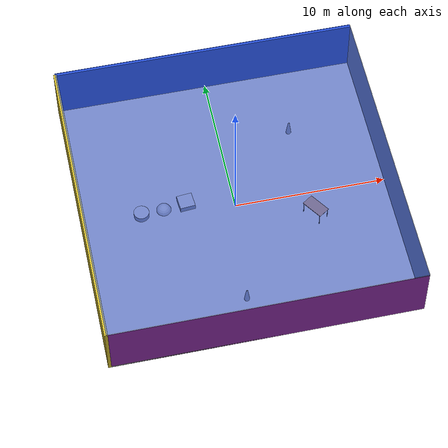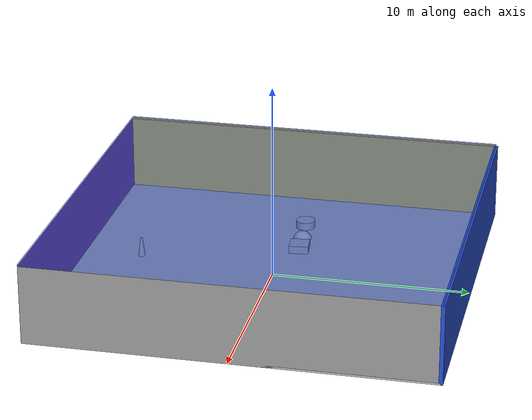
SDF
<sdf version="1.4">
 <world name="default">
  <physics type="ode">
   <max_step_size>0.001</max_step_size>
   <real_time_factor>1</real_time_factor>
   <real_time_update_rate>1000</real_time_update_rate>
   <gravity>0 0 -9.8</gravity>
  </physics>
  <scene><ambient>0.4 0.4 0.4 1</ambient><background>0.7 0.7 0.7 1</background><shadows>1</shadows></scene>
  <model name="Surrounding">
   <static>1</static>
   <link name="Ceiling">
    <collision name="Ceiling_Collision"><geometry><box><size>20 20 0.1</size></box></geometry></collision>
    <visual name="Ceiling_Visual">
     <geometry><box><size>20 20 0.1</size></box></geometry>
     <material>
      <script><uri>file://media/materials/scripts/gazebo.material</uri><name>Gazebo/BlueTransparent</name></script>
     </material>
    </visual>
    <pose>0 0 4.05 0 0 0</pose>
   </link>
   <link name="Wall_South">
    <collision name="Wall_South_Collision">
     <geometry><box><size>20 0 4</size></box></geometry>
     <pose>0 0 2 0 -0 0</pose>
    </collision>
    <visual name="Wall_South_Visual">
     <pose>0 0 2 0 -0 0</pose>
     <geometry><box><size>20 0 4</size></box></geometry>
     <material>
      <script><uri>file://media/materials/scripts/gazebo.material</uri><name>Gazebo/PurpleGlow</name></script>
     </material>
    </visual>
    <velocity_decay><linear>0</linear><angular>0</angular></velocity_decay>
    <pose>0 -10 0 0 -0 0</pose>
   </link>
   <link name="Wall_East">
    <collision name="Wall_21_Collision">
     <geometry><box><size>20 0 4</size></box></geometry>
     <pose>0 0 2 0 -0 0</pose>
    </collision>
    <visual name="Wall_21_Visual">
     <pose>0 0 2 0 -0 0</pose>
     <geometry><box><size>20 0 4</size></box></geometry>
     <material>
      <script><uri>file://media/materials/scripts/gazebo.material</uri><name>Gazebo/GreyGradientSky</name></script>
     </material>
    </visual>
    <velocity_decay><linear>0</linear><angular>0</angular></velocity_decay>
    <pose>10 0 0 0 -0 1.5708</pose>
   </link>
   <link name="Wall_North">
    <collision name="Wall_22_Collision">
     <geometry><box><size>20 0.2 4</size></box></geometry>
     <pose>0 0 2 0 -0 0</pose>
    </collision>
    <visual name="Wall_22_Visual">
     <pose>0 0 2 0 -0 0</pose>
     <geometry><box><size>20 0.2 4</size></box></geometry>
     <material>
      <script><uri>file://media/materials/scripts/gazebo.material</uri><name>Gazebo/BlueLaser</name></script>
     </material>
    </visual>
    <velocity_decay><linear>0</linear><angular>0</angular></velocity_decay>
    <pose>0 10 0 0 -0 0</pose>
   </link>
   <link name="Wall_West">
    <collision name="Wall_23_Collision">
     <geometry><box><size>20 0.2 4</size></box></geometry>
     <pose>0 0 2 0 -0 0</pose>
    </collision>
    <visual name="Wall_23_Visual">
     <pose>0 0 2 0 -0 0</pose>
     <geometry><box><size>20 0.2 4</size></box></geometry>
     <material>
      <script><uri>file://media/materials/scripts/gazebo.material</uri><name>Gazebo/ZincYellow</name></script>
     </material>
    </visual>
    <velocity_decay><linear>0</linear><angular>0</angular></velocity_decay>
    <pose>-10 0 0 0 0 -1.5708</pose>
   </link>
   <link name="Ground_link">
    <collision name="collision">
     <pose>0 0 .05 0 -0 0</pose>
     <geometry><box><size>20 20 0.1</size></box></geometry>
    </collision>
    <visual name="visual">
     <pose>0 0 .05 0 -0 0</pose>
     <geometry><box><size>20 20 0.1</size></box></geometry>
     <material>
      <script><uri>file://media/materials/scripts/gazebo.material</uri><name>Gazebo/PioneerBody</name></script>
     </material>
    </visual>
   </link>
   <static>1</static>
  </model>
  <spherical_coordinates>
   <surface_model>EARTH_WGS84</surface_model>
   <latitude_deg>0</latitude_deg>
   <longitude_deg>0</longitude_deg>
   <elevation>0</elevation>
   <heading_deg>0</heading_deg>
  </spherical_coordinates>
  <light name="lightball_0" type="diffuse">
   <diffuse>0.8 0.8 0.8 1</diffuse>
   <specular>0.2 0.2 0.2 1</specular>
   <attenuation>
    <range>100</range>
    <constant>0.7</constant>
    <linear>0.01</linear>
    <quadratic>0.001</quadratic>
   </attenuation>
   <direction>-0.5 0.1 -0.9</direction>
   <pose>-2.13844210156 5.27743886152 2.02512436459 0 0 0</pose>
  </light>
  <light name="lightball_1" type="diffuse">
   <diffuse>0.8 0.8 0.8 1</diffuse>
   <specular>0.2 0.2 0.2 1</specular>
   <attenuation>
    <range>100</range>
    <constant>0.7</constant>
    <linear>0.01</linear>
    <quadratic>0.001</quadratic>
   </attenuation>
   <direction>-0.5 0.1 -0.9</direction>
   <pose>1.2545722638 5.24793883956 1.63998130231 0 0 0</pose>
  </light>
  <light name="lightball_2" type="diffuse">
   <diffuse>0.8 0.8 0.8 1</diffuse>
   <specular>0.2 0.2 0.2 1</specular>
   <attenuation>
    <range>100</range>
    <constant>0.7</constant>
    <linear>0.01</linear>
    <quadratic>0.001</quadratic>
   </attenuation>
   <direction>-0.5 0.1 -0.9</direction>
   <pose>2.67234785121 -7.40729136584 2.54861227565 0 0 0</pose>
  </light>
  <light name="lightball_3" type="diffuse">
   <diffuse>0.8 0.8 0.8 1</diffuse>
   <specular>0.2 0.2 0.2 1</specular>
   <attenuation>
    <range>100</range>
    <constant>0.7</constant>
    <linear>0.01</linear>
    <quadratic>0.001</quadratic>
   </attenuation>
   <direction>-0.5 0.1 -0.9</direction>
   <pose>-7.97379781863 -3.76338088723 2.36145571214 0 0 0</pose>
  </light>
  <light name="lightball_4" type="diffuse">
   <diffuse>0.8 0.8 0.8 1</diffuse>
   <specular>0.2 0.2 0.2 1</specular>
   <attenuation>
    <range>100</range>
    <constant>0.7</constant>
    <linear>0.01</linear>
    <quadratic>0.001</quadratic>
   </attenuation>
   <direction>-0.5 0.1 -0.9</direction>
   <pose>2.31904931798 1.31634390095 1.68321028089 0 0 0</pose>
  </light>
  <light name="lightball_5" type="diffuse">
   <diffuse>0.8 0.8 0.8 1</diffuse>
   <specular>0.2 0.2 0.2 1</specular>
   <attenuation>
    <range>100</range>
    <constant>0.7</constant>
    <linear>0.01</linear>
    <quadratic>0.001</quadratic>
   </attenuation>
   <direction>-0.5 0.1 -0.9</direction>
   <pose>0.2117490556 5.68280164664 3.56550355717 0 0 0</pose>
  </light>
  <light name="lightball_6" type="diffuse">
   <diffuse>0.8 0.8 0.8 1</diffuse>
   <specular>0.2 0.2 0.2 1</specular>
   <attenuation>
    <range>100</range>
    <constant>0.7</constant>
    <linear>0.01</linear>
    <quadratic>0.001</quadratic>
   </attenuation>
   <direction>-0.5 0.1 -0.9</direction>
   <pose>2.1954151381 8.66644951253 2.53484518495 0 0 0</pose>
  </light>
  <light name="lightball_7" type="diffuse">
   <diffuse>0.8 0.8 0.8 1</diffuse>
   <specular>0.2 0.2 0.2 1</specular>
   <attenuation>
    <range>100</range>
    <constant>0.7</constant>
    <linear>0.01</linear>
    <quadratic>0.001</quadratic>
   </attenuation>
   <direction>-0.5 0.1 -0.9</direction>
   <pose>1.16696062106 -1.28506772475 1.56982138447 0 0 0</pose>
  </light>
  <light name="lightball_8" type="diffuse">
   <diffuse>0.8 0.8 0.8 1</diffuse>
   <specular>0.2 0.2 0.2 1</specular>
   <attenuation>
    <range>100</range>
    <constant>0.7</constant>
    <linear>0.01</linear>
    <quadratic>0.001</quadratic>
   </attenuation>
   <direction>-0.5 0.1 -0.9</direction>
   <pose>2.42165711237 3.29564596446 2.01327956753 0 0 0</pose>
  </light>
  <light name="lightball_9" type="diffuse">
   <diffuse>0.8 0.8 0.8 1</diffuse>
   <specular>0.2 0.2 0.2 1</specular>
   <attenuation>
    <range>100</range>
    <constant>0.7</constant>
    <linear>0.01</linear>
    <quadratic>0.001</quadratic>
   </attenuation>
   <direction>-0.5 0.1 -0.9</direction>
   <pose>-4.06960590074 -4.14290029723 3.66759156522 0 0 0</pose>
  </light>
  <light name="lightball_10" type="diffuse">
   <diffuse>0.8 0.8 0.8 1</diffuse>
   <specular>0.2 0.2 0.2 1</specular>
   <attenuation>
    <range>100</range>
    <constant>0.7</constant>
    <linear>0.01</linear>
    <quadratic>0.001</quadratic>
   </attenuation>
   <direction>-0.5 0.1 -0.9</direction>
   <pose>4.88479648273 -7.82668708011 2.3767295871 0 0 0</pose>
  </light>
  <light name="lightball_11" type="diffuse">
   <diffuse>0.8 0.8 0.8 1</diffuse>
   <specular>0.2 0.2 0.2 1</specular>
   <attenuation>
    <range>100</range>
    <constant>0.7</constant>
    <linear>0.01</linear>
    <quadratic>0.001</quadratic>
   </attenuation>
   <direction>-0.5 0.1 -0.9</direction>
   <pose>5.17643479841 -7.12250468723 0.914169527507 0 0 0</pose>
  </light>
  <light name="lightball_12" type="diffuse">
   <diffuse>0.8 0.8 0.8 1</diffuse>
   <specular>0.2 0.2 0.2 1</specular>
   <attenuation>
    <range>100</range>
    <constant>0.7</constant>
    <linear>0.01</linear>
    <quadratic>0.001</quadratic>
   </attenuation>
   <direction>-0.5 0.1 -0.9</direction>
   <pose>9.09312724264 1.34091596269 2.42218151527 0 0 0</pose>
  </light>
  <light name="lightball_13" type="diffuse">
   <diffuse>0.8 0.8 0.8 1</diffuse>
   <specular>0.2 0.2 0.2 1</specular>
   <attenuation>
    <range>100</range>
    <constant>0.7</constant>
    <linear>0.01</linear>
    <quadratic>0.001</quadratic>
   </attenuation>
   <direction>-0.5 0.1 -0.9</direction>
   <pose>-4.57315022389 -0.607192429858 2.67721277201 0 0 0</pose>
  </light>
  <include>
   <uri>model://textured_shapes</uri>
   <pose>-4.61572618908 0.61585747979 0 0 0 1.6622748487</pose>
  </include>
  <include>
   <uri>model://construction_cone</uri>
   <pose>-0.744844844526 -7.03927986727 0 0 0 2.06815651863</pose>
  </include>
  <include><uri>model://table</uri><pose>4.95359319119 -1.73247983912 0 0 0 2.16824334445</pose></include>
  <include>
   <uri>model://construction_cone</uri>
   <pose>4.71419181634 5.00049869918 0 0 0 0.781172478988</pose>
  </include>
 </world>
</sdf>

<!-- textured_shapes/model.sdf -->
<sdf version="1.6">
  <model name="textured_shapes">
    <pose>0 0 0.5 0 0 0</pose>
    <link name="box">
      <pose>0 -1.5 0 0 0 0</pose>
      <collision name="collision">
        <geometry>
          <box>
            <size>1 1 1</size>
          </box>
        </geometry>
      </collision>
      <visual name="visual">
        <geometry>
          <box>
            <size>1 1 1</size>
          </box>
        </geometry>
        <material>
          <script>
            <uri>model://../model_source/models/textured_shapes/materials/scripts</uri>
            <uri>model://../model_source/models/textured_shapes/materials/textures</uri>
            <name>TexturedShape/Squares</name>
          </script>
        </material>
      </visual>
    </link>
    <link name="sphere">
      <collision name="collision">
        <geometry>
          <sphere>
            <radius>0.5</radius>
          </sphere>
        </geometry>
      </collision>
      <visual name="visual">
        <geometry>
          <sphere>
            <radius>0.5</radius>
          </sphere>
        </geometry>
        <material>
          <script>
            <uri>model://../model_source/models/textured_shapes/materials/scripts</uri>
            <uri>model://../model_source/models/textured_shapes/materials/textures</uri>
            <name>TexturedShape/Squares</name>
          </script>
        </material>
      </visual>
    </link>
    <link name="cylinder">
      <pose>0 1.5 0 0 0 0</pose>
      <collision name="collision">
        <geometry>
          <cylinder>
            <radius>0.5</radius>
            <length>1</length>
          </cylinder>
        </geometry>
      </collision>
      <visual name="visual">
        <geometry>
          <cylinder>
            <radius>0.5</radius>
            <length>1</length>
          </cylinder>
        </geometry>
        <material>
          <script>
            <uri>model://../model_source/models/textured_shapes/materials/scripts</uri>
            <uri>model://../model_source/models/textured_shapes/materials/textures</uri>
            <name>TexturedShape/Squares</name>
          </script>
        </material>
      </visual>
    </link>
  </model>
</sdf>

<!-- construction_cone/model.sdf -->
<sdf version="1.5">
  <model name="Construction Cone">
    <link name="link">
      <collision name="collision">
        <geometry>
          <mesh>
            <scale>10 10 10</scale>
            <uri>file://isr-testbed/construction_cone/meshes/construction_cone.dae</uri>
          </mesh>
        </geometry>
      </collision>
      <visual name="visual">
        <geometry>
          <mesh>
            <scale>10 10 10</scale>
            <uri>file://isr-testbed/construction_cone/meshes/construction_cone.dae</uri>
          </mesh>
        </geometry>
      </visual>
    </link>
  </model>
</sdf>

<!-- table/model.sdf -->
<sdf version="1.5">
  <model name="table">
    <static>true</static>
    <link name="link">
      <collision name="surface">
        <pose>0 0 1.0 0 0 0</pose>
        <geometry>
          <box>
            <size>1.5 0.8 0.03</size>
          </box>
        </geometry>
        <surface>
          <friction>
            <ode>
              <mu>0.6</mu>
              <mu2>0.6</mu2>
            </ode>
          </friction>
        </surface>
      </collision>
      <visual name="visual1">
        <pose>0 0 1.0 0 0 0</pose>
        <geometry>
          <box>
            <size>1.5 0.8 0.03</size>
          </box>
        </geometry>
        <material>
          <script>
            <uri>model://media/materials/scripts/gazebo.material</uri>
            <name>Gazebo/Wood</name>
          </script>
        </material>
      </visual>
      <collision name="front_left_leg">
        <pose>0.68 0.38 0.5 0 0 0</pose>
        <geometry>
          <cylinder>
            <radius>0.02</radius>
            <length>1.0</length>
          </cylinder>
        </geometry>
      </collision>
      <visual name="front_left_leg">
        <pose>0.68 0.38 0.5 0 0 0</pose>
        <geometry>
          <cylinder>
            <radius>0.02</radius>
            <length>1.0</length>
          </cylinder>
        </geometry>
        <material>
          <script>
            <uri>model://media/materials/scripts/gazebo.material</uri>
            <name>Gazebo/Grey</name>
          </script>
        </material>
      </visual>
      <collision name="front_right_leg">
        <pose>0.68 -0.38 0.5 0 0 0</pose>
        <geometry>
          <cylinder>
            <radius>0.02</radius>
            <length>1.0</length>
          </cylinder>
        </geometry>
      </collision>
      <visual name="front_right_leg">
        <pose>0.68 -0.38 0.5 0 0 0</pose>
        <geometry>
          <cylinder>
            <radius>0.02</radius>
            <length>1.0</length>
          </cylinder>
        </geometry>
        <material>
          <script>
            <uri>model://media/materials/scripts/gazebo.material</uri>
            <name>Gazebo/Grey</name>
          </script>
        </material>
      </visual>
      <collision name="back_right_leg">
        <pose>-0.68 -0.38 0.5 0 0 0</pose>
        <geometry>
          <cylinder>
            <radius>0.02</radius>
            <length>1.0</length>
          </cylinder>
        </geometry>
      </collision>
      <visual name="back_right_leg">
        <pose>-0.68 -0.38 0.5 0 0 0</pose>
        <geometry>
          <cylinder>
            <radius>0.02</radius>
            <length>1.0</length>
          </cylinder>
        </geometry>
        <material>
          <script>
            <uri>model://media/materials/scripts/gazebo.material</uri>
            <name>Gazebo/Grey</name>
          </script>
        </material>
      </visual>
      <collision name="back_left_leg">
        <pose>-0.68 0.38 0.5 0 0 0</pose>
        <geometry>
          <cylinder>
            <radius>0.02</radius>
            <length>1.0</length>
          </cylinder>
        </geometry>
      </collision>
      <visual name="back_left_leg">
        <pose>-0.68 0.38 0.5 0 0 0</pose>
        <geometry>
          <cylinder>
            <radius>0.02</radius>
            <length>1.0</length>
          </cylinder>
        </geometry>
        <material>
          <script>
            <uri>model://media/materials/scripts/gazebo.material</uri>
            <name>Gazebo/Grey</name>
          </script>
        </material>
      </visual>
    </link>
  </model>
</sdf>
